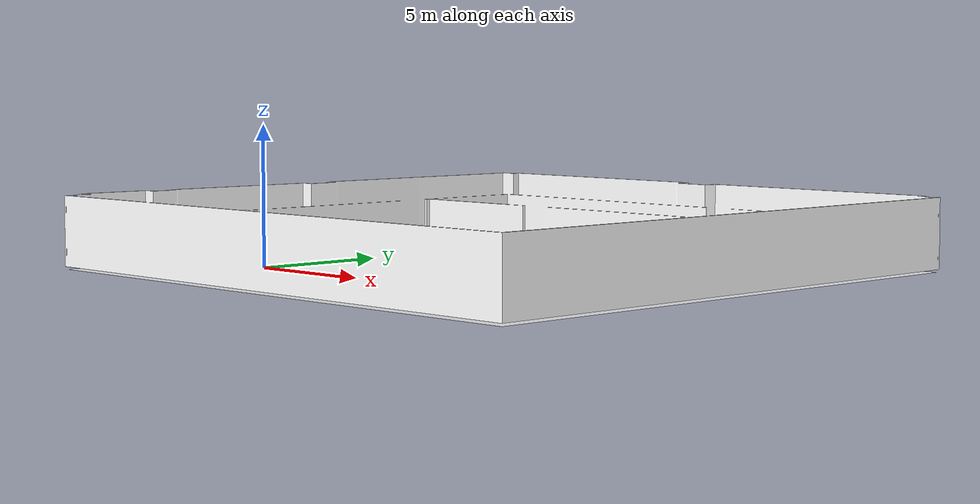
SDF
<?xml version='1.0' encoding='utf-8'?>
<sdf version="1.7">
  <model name="suntech_office_L1">
    <static>true</static>
    <link name="floor_1">
      <visual name="visual">
        <geometry>
          <mesh>
            <uri>model://suntech_office_L1/meshes/floor_1.obj</uri>
          </mesh>
        </geometry>
        <material>
          <diffuse>1.0 1.0 1.0</diffuse>
          <specular>0.1 0.1 0.1</specular>
          <pbr>
            <metal>
              <metalness>0.0</metalness>
              <albedo_map>model://suntech_office_L1/meshes/white_beige_tiles.png</albedo_map>
            </metal>
          </pbr>
          <script>
            <uri>model://suntech_office_L1/meshes/</uri>
            <name>floor_1_Diffuse</name>
          </script>
        </material>
      </visual>
      <collision name="collision">
        <geometry>
          <mesh>
            <uri>model://suntech_office_L1/meshes/floor_1.obj</uri>
          </mesh>
        </geometry>
        <surface>
          <contact>
            <collide_bitmask>0x01</collide_bitmask>
          </contact>
        </surface>
      </collision>
    </link>
    <link name="floor_2">
      <visual name="visual">
        <geometry>
          <mesh>
            <uri>model://suntech_office_L1/meshes/floor_2.obj</uri>
          </mesh>
        </geometry>
        <material>
          <diffuse>1.0 1.0 1.0</diffuse>
          <specular>0.1 0.1 0.1</specular>
          <pbr>
            <metal>
              <metalness>0.0</metalness>
              <albedo_map>model://suntech_office_L1/meshes/blue_linoleum.png</albedo_map>
            </metal>
          </pbr>
          <script>
            <uri>model://suntech_office_L1/meshes/</uri>
            <name>floor_2_Diffuse</name>
          </script>
        </material>
      </visual>
      <collision name="collision">
        <geometry>
          <mesh>
            <uri>model://suntech_office_L1/meshes/floor_2.obj</uri>
          </mesh>
        </geometry>
        <surface>
          <contact>
            <collide_bitmask>0x01</collide_bitmask>
          </contact>
        </surface>
      </collision>
    </link>
    <link name="wall_1">
      <visual name="wall_1">
        <geometry>
          <mesh>
            <uri>model://suntech_office_L1/meshes/wall_1.obj</uri>
          </mesh>
        </geometry>
        <transparency>0.0</transparency>
        <material>
          <diffuse>1.0 1.0 1.0</diffuse>
          <specular>0.1 0.1 0.1</specular>
          <pbr>
            <metal>
              <metalness>0.0</metalness>
              <albedo_map>model://suntech_office_L1/meshes/default.png</albedo_map>
            </metal>
          </pbr>
          <script>
            <uri>model://suntech_office_L1/meshes/</uri>
            <name>wall_1_Diffuse</name>
          </script>
        </material>
      </visual>
      <collision name="collision">
        <geometry>
          <mesh>
            <uri>model://suntech_office_L1/meshes/wall_1.obj</uri>
          </mesh>
        </geometry>
        <surface>
          <contact>
            <collide_bitmask>0x01</collide_bitmask>
          </contact>
        </surface>
      </collision>
      <pose>-5.644287483707139 -4.817459302655047 0 0 0 0</pose>
    </link>
  </model>
</sdf>
